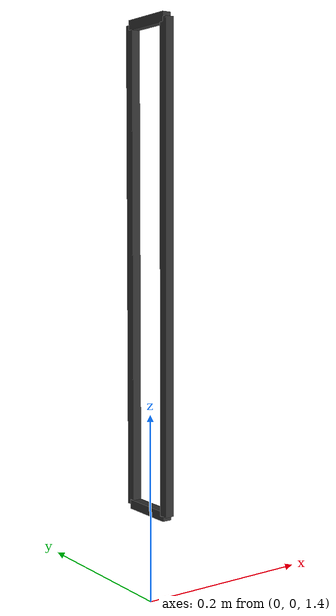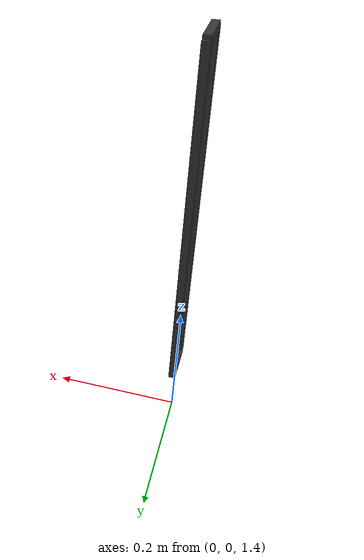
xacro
<?xml version="1.0"?>
<robot xmlns:xacro="http://www.ros.org/wiki/xacro" name="four_bar_linkage">

   <!-- Constants for robot dimensions -->
  <xacro:property name="PI" value="3.1415926535897931"/>
  <!-- Important angle when robot at origin point, must be calculated!!!!!! -->
  <xacro:property name="elbow_angle" value="${30*PI/180}" />
  <xacro:property name="wrist_angle" value="-${elbow_angle}" />
  <xacro:property name="mass" value="0.02" /> <!-- arbitrary value for mass -->
  <xacro:property name="upper_width" value="0.04" /> <!-- Square dimensions (widthxwidth) of beams -->
  <xacro:property name="lower_width" value="0.01" />
  <xacro:property name="upper_height" value="0.2" /> <!-- base and end links -->
  <xacro:property name="lower_height1" value="0.06" /> <!-- Upper link -->
  <xacro:property name="lower_height2" value="0.5" /> <!-- lower link -->
  <xacro:property name="lower_height3" value="0.03" /> <!-- Upper link -->

  <!-- Properties for easy modifications -->
  <xacro:property name="link_length" value="1.0"/>
  <xacro:property name="link_width" value="0.1"/>
  <xacro:property name="link_height" value="0.02"/>
  <xacro:property name="prefix" value="front_"/>

   <link name="world"/>

  <joint name="fixed" type="fixed">
    <parent link="world"/>
    <child link="${prefix}lower_top_link"/>
    <origin xyz="0 0 2" rpy="0 0 0"/>
  </joint>

  <link name="${prefix}lower_top_link">
      <collision>
        <origin xyz="0 0 0" rpy="0 0 0"/>
        <geometry>
          <box size="${lower_width} ${lower_height1} ${lower_width}"/>
        </geometry>
      </collision>
      <visual>
        <origin xyz="0 0 0" rpy="0 0 0"/>
        <geometry>
          <box size="${lower_width} ${lower_height1} ${lower_width}"/>
        </geometry>
        <material name="grey">
          <color rgba="0.2 0.2 0.2 1.0"/>
        </material>
      </visual>
      <inertial>
        <origin xyz="0 0 0" rpy="0 0 0"/>
        <mass value="${mass}"/>
        <inertia
          ixx="${mass / 12.0 * (lower_width*lower_width + lower_height1*lower_height1)}" ixy="0.0" ixz="0.0"
          iyy="${mass / 12.0 * (lower_width*lower_width + lower_width*lower_width)}" iyz="0.0"
          izz="${mass / 12.0 * (lower_width*lower_width + lower_height1*lower_height1)}"/>
      </inertial>
    </link>

    <joint name="${prefix}lower_top_rignt_joint" type="continuous">
      <parent link="${prefix}lower_top_link"/>
      <child link="${prefix}lower_right_link"/>
      <origin xyz="0 ${-lower_height1/2} 0" rpy="0 0 0"/>
      <axis xyz="1 0 0"/>
    </joint>

    <link name="${prefix}lower_right_link">
      <collision>
        <origin xyz="0 0 ${-lower_height2/2}" rpy="0 0 0"/>
        <geometry>
          <box size="${lower_width} ${lower_width} ${lower_height2}"/>
        </geometry>
      </collision>
      <visual>
        <origin xyz="0 0 ${-lower_height2/2}" rpy="0 0 0"/>
        <geometry>
          <box size="${lower_width} ${lower_width} ${lower_height2}"/>
        </geometry>
        <material name="grey">
          <color rgba="0.2 0.2 0.2 1.0"/>
        </material>
      </visual>
      <inertial>
        <origin xyz="0 0 ${-lower_height2/2}" rpy="0 0 0"/>
        <mass value="${mass}"/>
        <inertia
          ixx="${mass / 12.0 * (lower_width*lower_width + lower_height2*lower_height2)}" ixy="0.0" ixz="0.0"
          iyy="${mass / 12.0 * (lower_height2*lower_height2 + lower_width*lower_width)}" iyz="0.0"
          izz="${mass / 12.0 * (lower_width*lower_width + lower_width*lower_width)}"/>
      </inertial>
    </link>

    <joint name="${prefix}lower_top_left_joint" type="continuous">
      <parent link="${prefix}lower_top_link"/>
      <child link="${prefix}lower_left_link"/>
      <origin xyz="0 ${lower_height1/2} 0" rpy="0 0 0"/>
      <axis xyz="1 0 0"/>
    </joint>

    <link name="${prefix}lower_left_link">
      <collision>
        <origin xyz="0 0 ${-lower_height2/2}" rpy="0 0 0"/>
        <geometry>
          <box size="${lower_width} ${lower_width} ${lower_height2}"/>
        </geometry>
      </collision>
      <visual>
        <origin xyz="0 0 ${-lower_height2/2}" rpy="0 0 0"/>
        <geometry>
          <box size="${lower_width} ${lower_width} ${lower_height2}"/>
        </geometry>
        <material name="grey">
          <color rgba="0.2 0.2 0.2 1.0"/>
        </material>
      </visual>
      <inertial>
        <origin xyz="0 0 ${-lower_height2/2}" rpy="0 0 0"/>
        <mass value="${mass}"/>
        <inertia
          ixx="${mass / 12.0 * (lower_width*lower_width + lower_height2*lower_height2)}" ixy="0.0" ixz="0.0"
          iyy="${mass / 12.0 * (lower_height2*lower_height2 + lower_width*lower_width)}" iyz="0.0"
          izz="${mass / 12.0 * (lower_width*lower_width + lower_width*lower_width)}"/>
      </inertial>
    </link>

    <joint name="${prefix}lower_right_bottom_joint" type="revolute">
      <parent link="${prefix}lower_right_link"/>
      <child link="${prefix}lower_bottom_link"/>
      <origin xyz="0 0 ${-lower_height2}" rpy="0 0 0"/>
      <axis xyz="1 0 0"/>
      <limit lower="-3.14" upper="3.14" effort="1000"
                velocity="10" />
    </joint>

    <link name="${prefix}lower_bottom_link">
      <collision>
        <origin xyz="0 ${lower_height1/2} 0" rpy="0 0 0"/>
        <geometry>
          <box size="${lower_width} ${lower_height1} ${lower_width}"/>
        </geometry>
      </collision>
      <visual>
        <origin xyz="0 ${lower_height1/2} 0" rpy="0 0 0"/>
        <geometry>
          <box size="${lower_width} ${lower_height1} ${lower_width}"/>
        </geometry>
        <material name="grey">
          <color rgba="0.2 0.2 0.2 1.0"/>
        </material>
      </visual>
      <inertial>
        <origin xyz="0 ${lower_height1/2} 0" rpy="0 0 0"/>
        <mass value="${mass}"/>
        <inertia
          ixx="${mass / 12.0 * (lower_width*lower_width + lower_height1*lower_height1)}" ixy="0.0" ixz="0.0"
          iyy="${mass / 12.0 * (lower_height1*lower_height1 + lower_width*lower_width)}" iyz="0.0"
          izz="${mass / 12.0 * (lower_width*lower_width + lower_width*lower_width)}"/>
      </inertial>
    </link>

    <joint name="${prefix}lower_bottom_virtual_joint" type="continuous">
      <parent link="${prefix}lower_bottom_link"/>
      <child link="${prefix}lower_bottom_virtual_link"/>
      <origin xyz="0 ${lower_height1} 0" rpy="0 0 0"/>
      <axis xyz="1 0 0"/>
    </joint>

    <link name="${prefix}lower_bottom_virtual_link">
      <inertial>
        <origin xyz="0 0 0" rpy="0 0 0"/>
        <mass value="0.01"/>
        <inertia
          ixx="0.001" ixy="0.0" ixz="0.0"
          iyy="0.001" iyz="0.0"
          izz="0.001"/>
      </inertial>
    </link>

    <joint name="${prefix}lower_left_virtual_joint" type="fixed">
      <parent link="${prefix}lower_left_link"/>
      <child link="${prefix}lower_left_virtual_link"/>
      <origin xyz="0 0 ${-lower_height2}" rpy="0 0 0"/>
    </joint>

    <link name="${prefix}lower_left_virtual_link">
      <inertial>
        <origin xyz="0 0 0" rpy="0 0 0"/>
        <mass value="0.01"/>
        <inertia
          ixx="0.001" ixy="0.0" ixz="0.0"
          iyy="0.001" iyz="0.0"
          izz="0.001"/>
      </inertial>
    </link>

<ros2_control name="GazeboSystem" type="system">
    <hardware>
      <plugin>gazebo_ros2_control/GazeboSystem</plugin>
    </hardware>
    <joint name="front_lower_right_bottom_joint">
      <command_interface name="effort">
        <param name="min">-1000</param>
        <param name="max">1000</param>
      </command_interface>
      <state_interface name="position">
        <param name="initial_value">1.0</param>
      </state_interface>
      <state_interface name="velocity"/>
      <state_interface name="effort"/>
    </joint>
  </ros2_control>

    <gazebo>
        <plugin name="gazebo_ros2_control" filename="libgazebo_ros2_control.so">
            <parameters>$(find four_bar)/config/control.yaml</parameters>
        </plugin>

        <joint name="${prefix}lower_left_bottom_joint" type="fixed">
        <parent>${prefix}lower_left_virtual_link</parent>
        <child>${prefix}lower_bottom_virtual_link</child>
        <pose> 0 0 0 0 0 0 </pose>
      </joint>

    </gazebo>

</robot>
